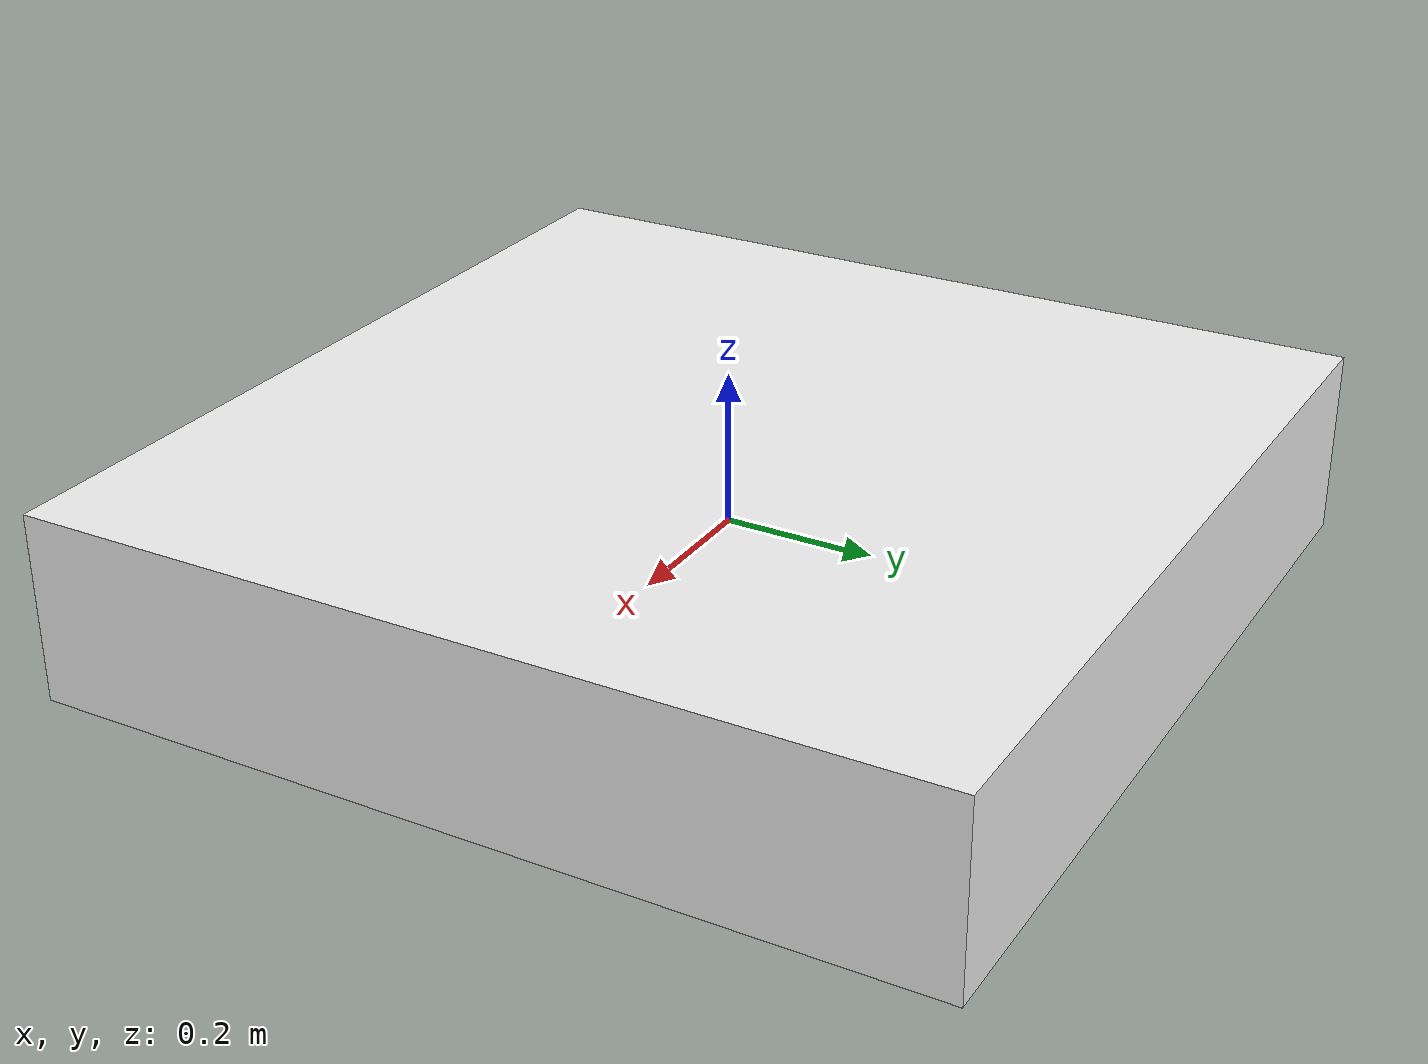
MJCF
<?xml version="1.0" encoding="utf-8"?>
<mujoco model="stationary_block_3d">
  <compiler angle="radian"/>

  <asset>
    <!-- visual only; the physics of the same name comes from the palette -->
    <material name="plastic" rgba="0.95 0.95 0.95 1" specular="0.1" shininess="0.1"/>
  </asset>

  <default>
    <joint damping="0.0" armature="0.0"/>
  </default>

  <worldbody>
    <body name="block" pos="0 0 0">
      <freejoint name="root"/>

      <!-- 1.2 x 1.2 x 0.25 m plastic slab, 342 kg -->
      <geom name="block_geom" type="box" size="0.60 0.60 0.125"
            material="plastic" mass="342"/>
    </body>
  </worldbody>

  <!-- No actuators - this is a stationary block -->
  <actuator>
  </actuator>
</mujoco>
